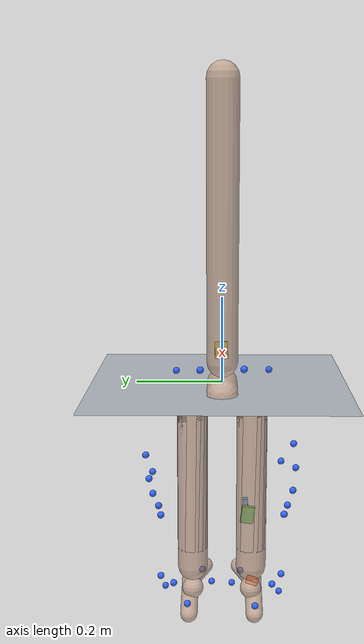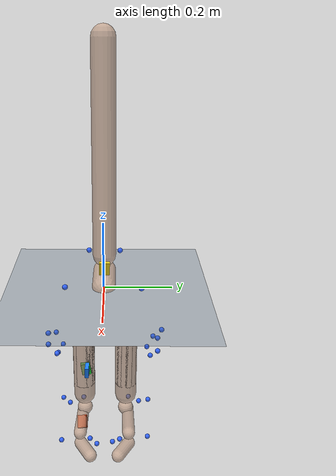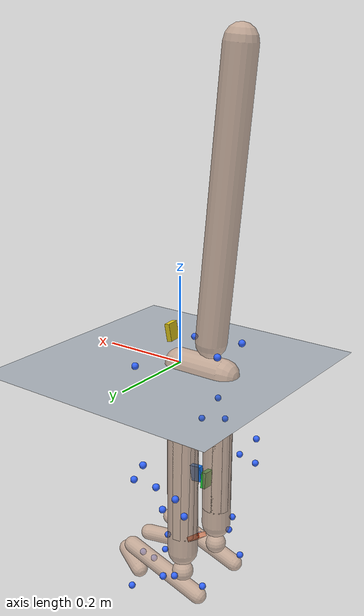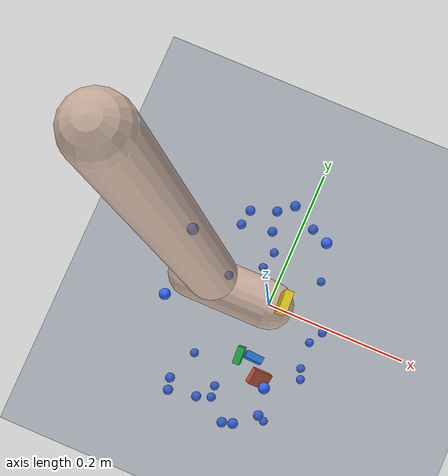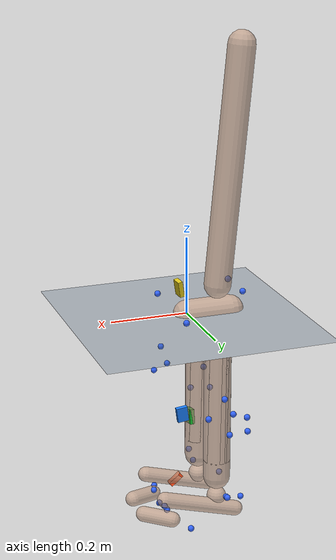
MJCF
<mujoco model="AB17">
  <compiler angle="radian" autolimits="true"/>
  <option timestep="0.005" gravity="0 0 -9.81"><flag contact="disable"/></option>
  <visual><global offwidth="1280" offheight="720"/></visual>
  <default><joint limited="false" damping="0"/><geom contype="0" conaffinity="0"/></default>
  <asset>
    <texture name="grid" type="2d" builtin="checker" rgb1="0.2 0.3 0.4" rgb2="0.3 0.4 0.5" width="512" height="512"/>
    <material name="grid" texture="grid" texrepeat="2 2" texuniform="true"/>
    <material name="skin" rgba="0.8 0.65 0.55 0.7"/>
  </asset>
  <worldbody>
    <light pos="0 0 4" dir="0 0 -1"/>
    <geom name="floor" type="plane" size="0 0 0.05" material="grid"/>
    <body name="pelvis" pos="0 0 0" quat="1 0 0 0">
      <joint name="pelvis_tx" type="slide" axis="1 0 0"/>
      <joint name="pelvis_ty" type="slide" axis="0 0 1"/>
      <joint name="pelvis_tz" type="slide" axis="0 -1 0"/>
      <joint name="pelvis_tilt" type="hinge" axis="0 -1 0"/>
      <joint name="pelvis_list" type="hinge" axis="1 0 0"/>
      <joint name="pelvis_rotation" type="hinge" axis="0 0 1"/>
      <inertial pos="-0.058198868 0 0" mass="9.66482" diaginertia="0.096648211 0.096648211 0.096648211"/>
      <geom type="capsule" fromto="0 0 0 -0.11639774 0 0" size="0.035" material="skin" mass="0"/>
      <site name="m_R_ASIS" pos="0.040092011 -0.11033303 0.020658145" size="0.008" rgba="0.2 0.4 1 1" group="2"/>
      <site name="m_L_ASIS" pos="0.040630144 0.10916832 0.017670494" size="0.008" rgba="0.2 0.4 1 1" group="2"/>
      <site name="m_L_PSIS" pos="-0.13215133 0.048343885 0.059671703" size="0.008" rgba="0.2 0.4 1 1" group="2"/>
      <site name="m_R_PSIS" pos="-0.13090733 -0.048031484 0.061258153" size="0.008" rgba="0.2 0.4 1 1" group="2"/>
      <body name="femur_r" pos="-0.058198868 -0.068735579 -0.054412237" quat="1 0 0 0">
        <joint name="hip_flexion_r" type="hinge" axis="0 -1 0"/>
        <joint name="hip_adduction_r" type="hinge" axis="1 0 0"/>
        <joint name="hip_rotation_r" type="hinge" axis="0 0 1"/>
        <inertial pos="0 0 -0.16627577" mass="7.63321" diaginertia="0.076332145 0.076332145 0.076332145"/>
        <geom type="capsule" fromto="0 0 0 0 0 -0.33255154" size="0.035" material="skin" mass="0"/>
        <site name="m_R_Thigh_Upper" pos="0.068810413 -0.10181036 -0.099256841" size="0.008" rgba="0.2 0.4 1 1" group="2"/>
        <site name="m_R_Thigh_Front" pos="0.09798402 -0.074504945 -0.15286232" size="0.008" rgba="0.2 0.4 1 1" group="2"/>
        <site name="m_R_Thigh_Rear" pos="0.049728949 -0.10645441 -0.15266273" size="0.008" rgba="0.2 0.4 1 1" group="2"/>
        <site name="m_R_Knee_Lat" pos="-0.00097667618 -0.072581233 -0.40083659" size="0.008" rgba="0.2 0.4 1 1" group="2"/>
        <site name="imu_thigh" type="box" size="0.02 0.015 0.006" pos="0.049476776 0.012488421 -0.25127707" quat="0.54806373 0.51865978 -0.46927076 0.45869721" rgba="0.1 0.5 1 1" group="1"/>
        <body name="tibia_r" pos="0 0 0" quat="1 0 0 0">
          <joint name="knee_r_translation1" type="slide" axis="1 0 0"/>
          <joint name="knee_r_translation2" type="slide" axis="0 0 1"/>
          <joint name="knee_angle_r" type="hinge" axis="0 -1 0"/>
          <inertial pos="0 0 -0.18987277" mass="3.04257" diaginertia="0.030425681 0.030425681 0.030425681"/>
          <geom type="capsule" fromto="0 0 0 0 0 -0.37974555" size="0.035" material="skin" mass="0"/>
          <site name="m_R_Shank_Upper" pos="-0.050505497 -0.092936208 -0.17195091" size="0.008" rgba="0.2 0.4 1 1" group="2"/>
          <site name="m_R_Shank_Front" pos="-0.01001872 -0.084110031 -0.22367975" size="0.008" rgba="0.2 0.4 1 1" group="2"/>
          <site name="m_R_Shank_Rear" pos="-0.061783605 -0.072911691 -0.22562992" size="0.008" rgba="0.2 0.4 1 1" group="2"/>
          <site name="m_R_Ankle_Lat" pos="-0.0053041204 -0.050952478 -0.42551251" size="0.008" rgba="0.2 0.4 1 1" group="2"/>
          <site name="imu_shank" type="box" size="0.02 0.015 0.006" pos="0.025305536 0.0079185003 -0.26141166" quat="0.70032325 0.032277355 0.71023918 0.063763763" rgba="0.1 0.8 0.2 1" group="1"/>
          <body name="talus_r" pos="0 0 -0.4373074" quat="1 0 0 0">
            <joint name="ankle_angle_r" type="hinge" axis="-0.10501355 -0.97912632 -0.17402245"/>
            <inertial pos="0 0 0" mass="0.0820652" diaginertia="0.00082065221 0.00082065221 0.00082065221"/>
            <geom type="sphere" size="0.025" material="skin" mass="0"/>
            <body name="calcn_r" pos="-0.049598796 -0.0080545922 -0.042662897" quat="1 0 0 0">
              <joint name="subtalar_angle_r" type="hinge" axis="0.78717961 0.12094949 0.60474746"/>
              <inertial pos="0.097674921 0 0.029302476" mass="1.02582" diaginertia="0.010258153 0.010258153 0.010258153"/>
              <geom type="capsule" fromto="0 0 0 0.19534984 0 0.058604952" size="0.02" material="skin" mass="0"/>
              <site name="m_R_Heel" pos="-0.016202452 -0.00092604503 0.028939134" size="0.008" rgba="0.2 0.4 1 1" group="2"/>
              <site name="m_R_Toe_Lat" pos="0.14889091 -0.066080716 -0.015218928" size="0.008" rgba="0.2 0.4 1 1" group="2"/>
              <site name="m_R_Toe_Med" pos="0.17480782 0.051400973 -0.0056013466" size="0.008" rgba="0.2 0.4 1 1" group="2"/>
              <site name="m_R_Toe_Tip" pos="0.18257995 0.030240769 0.023770574" size="0.008" rgba="0.2 0.4 1 1" group="2"/>
              <site name="imu_foot" type="box" size="0.02 0.015 0.006" pos="0.11198965 0.0020607783 0.030536185" quat="0.93401495 0.14654019 0.32453229 -0.028650252" rgba="1 0.3 0.1 1" group="1"/>
              <body name="toes_r" pos="0.17464276 -0.0010548891 -0.0019534984" quat="1 0 0 0">
                <joint name="mtp_angle_r" type="hinge" axis="-0.5809544 -0.81393611 0"/>
                <inertial pos="0.033795523 0.017093111 0.0058604952" mass="0.177753" diaginertia="0.0017775327 0.0017775327 0.0017775327"/>
                <geom type="capsule" fromto="0 0 0 0.067591045 0.034186222 0.01172099" size="0.02" material="skin" mass="0"/>
              </body>
            </body>
          </body>
        </body>
      </body>
      <body name="femur_l" pos="-0.058198868 0.068735579 -0.054412237" quat="1 0 0 0">
        <joint name="hip_flexion_l" type="hinge" axis="0 -1 0"/>
        <joint name="hip_adduction_l" type="hinge" axis="-1 0 0"/>
        <joint name="hip_rotation_l" type="hinge" axis="0 0 -1"/>
        <inertial pos="0 0 -0.16627577" mass="7.63321" diaginertia="0.076332145 0.076332145 0.076332145"/>
        <geom type="capsule" fromto="0 0 0 0 0 -0.33255154" size="0.035" material="skin" mass="0"/>
        <site name="m_L_Thigh_Upper" pos="0.023831074 0.11018341 -0.11393719" size="0.008" rgba="0.2 0.4 1 1" group="2"/>
        <site name="m_L_Thigh_Front" pos="0.060893582 0.097284211 -0.16810731" size="0.008" rgba="0.2 0.4 1 1" group="2"/>
        <site name="m_L_Thigh_Rear" pos="-0.0034317943 0.10096555 -0.16255608" size="0.008" rgba="0.2 0.4 1 1" group="2"/>
        <site name="m_L_Knee_Lat" pos="-0.00067128207 0.076052692 -0.40740994" size="0.008" rgba="0.2 0.4 1 1" group="2"/>
        <body name="tibia_l" pos="0 0 0" quat="1 0 0 0">
          <joint name="knee_l_translation1" type="slide" axis="1 0 0"/>
          <joint name="knee_l_translation2" type="slide" axis="0 0 1"/>
          <joint name="knee_angle_l" type="hinge" axis="0 -1 0"/>
          <inertial pos="0 0 -0.18987277" mass="3.04257" diaginertia="0.030425681 0.030425681 0.030425681"/>
          <geom type="capsule" fromto="0 0 0 0 0 -0.37974555" size="0.035" material="skin" mass="0"/>
          <site name="m_L_Shank_Upper" pos="-0.045953927 0.089038217 -0.18274598" size="0.008" rgba="0.2 0.4 1 1" group="2"/>
          <site name="m_L_Shank_Front" pos="-0.0033644066 0.079208845 -0.22923457" size="0.008" rgba="0.2 0.4 1 1" group="2"/>
          <site name="m_L_Shank_Rear" pos="-0.055917669 0.070735863 -0.23109438" size="0.008" rgba="0.2 0.4 1 1" group="2"/>
          <site name="m_L_Ankle_Lat" pos="-0.0097473737 0.045199797 -0.42126014" size="0.008" rgba="0.2 0.4 1 1" group="2"/>
          <body name="talus_l" pos="0 0 -0.4373074" quat="1 0 0 0">
            <joint name="ankle_angle_l" type="hinge" axis="0.10501355 -0.97912632 0.17402245"/>
            <inertial pos="0 0 0" mass="0.0820652" diaginertia="0.00082065221 0.00082065221 0.00082065221"/>
            <geom type="sphere" size="0.025" material="skin" mass="0"/>
            <body name="calcn_l" pos="-0.049598796 0.0080545922 -0.042662897" quat="1 0 0 0">
              <joint name="subtalar_angle_l" type="hinge" axis="-0.78717961 0.12094949 -0.60474746"/>
              <inertial pos="0.097674921 0 0.029302476" mass="1.02582" diaginertia="0.010258153 0.010258153 0.010258153"/>
              <geom type="capsule" fromto="0 0 0 0.19534984 0 0.058604952" size="0.02" material="skin" mass="0"/>
              <site name="m_L_Heel" pos="-0.014813853 0.0025663338 0.033125695" size="0.008" rgba="0.2 0.4 1 1" group="2"/>
              <site name="m_L_Toe_Lat" pos="0.14636303 0.063365777 -0.00054337332" size="0.008" rgba="0.2 0.4 1 1" group="2"/>
              <site name="m_L_Toe_Med" pos="0.17099912 -0.05141903 -0.00044398163" size="0.008" rgba="0.2 0.4 1 1" group="2"/>
              <site name="m_L_Toe_Tip" pos="0.18618463 -0.028029912 0.024693205" size="0.008" rgba="0.2 0.4 1 1" group="2"/>
              <body name="toes_l" pos="0.17464276 0.0010548891 -0.0019534984" quat="1 0 0 0">
                <joint name="mtp_angle_l" type="hinge" axis="0.5809544 -0.81393611 0"/>
                <inertial pos="0.033795523 -0.017093111 0.0058604952" mass="0.177753" diaginertia="0.0017775327 0.0017775327 0.0017775327"/>
                <geom type="capsule" fromto="0 0 0 0.067591045 -0.034186222 0.01172099" size="0.02" material="skin" mass="0"/>
              </body>
            </body>
          </body>
        </body>
      </body>
      <body name="torso" pos="-0.082894286 0 0.067089218" quat="1 0 0 0">
        <joint name="lumbar_extension" type="hinge" axis="0 -1 0"/>
        <joint name="lumbar_bending" type="hinge" axis="1 0 0"/>
        <joint name="lumbar_rotation" type="hinge" axis="0 0 1"/>
        <inertial pos="-0.028470657 0 0.30368701" mass="28.0963" diaginertia="0.28096341 0.28096341 0.28096341"/>
        <geom type="capsule" fromto="0 0 0 -0.056941315 0 0.60737403" size="0.035" material="skin" mass="0"/>
        <site name="imu_trunk" type="box" size="0.02 0.015 0.006" pos="0.10452626 0.0026089998 0.004662374" quat="0.64732132 -0.029951956 0.76157815 0.0087581878" rgba="0.9 0.8 0.1 1" group="1"/>
      </body>
    </body>
  </worldbody>
  <sensor>
<accelerometer name="imu_foot_acc" site="imu_foot"/>
<gyro name="imu_foot_gyr" site="imu_foot"/>
<accelerometer name="imu_shank_acc" site="imu_shank"/>
<gyro name="imu_shank_gyr" site="imu_shank"/>
<accelerometer name="imu_thigh_acc" site="imu_thigh"/>
<gyro name="imu_thigh_gyr" site="imu_thigh"/>
<accelerometer name="imu_trunk_acc" site="imu_trunk"/>
<gyro name="imu_trunk_gyr" site="imu_trunk"/>
</sensor>
</mujoco>
